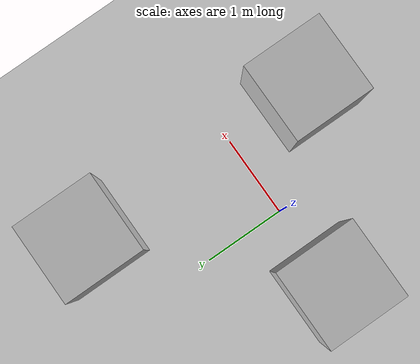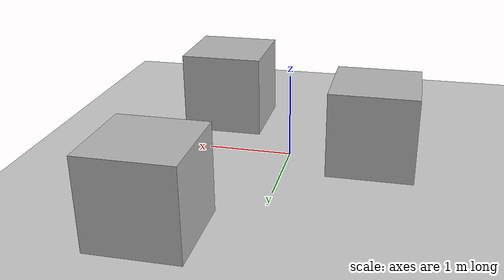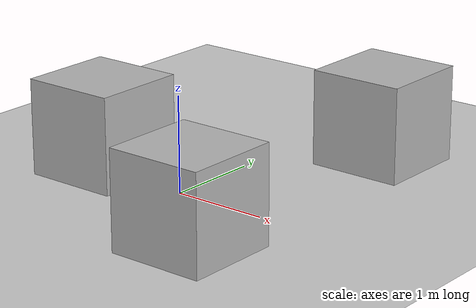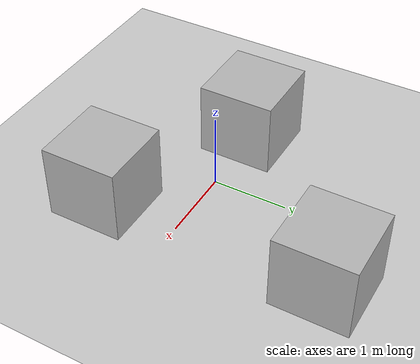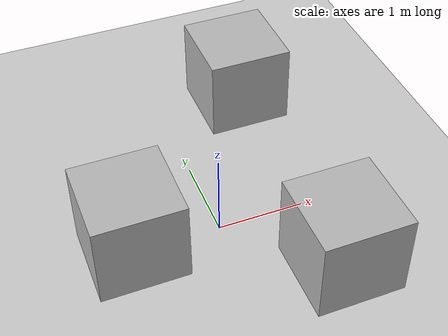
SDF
<?xml version="1.0" ?>
<sdf version="1.6">
  <world name="empty">
    <physics name="1ms" type="ignored">
      <max_step_size>0.001</max_step_size>
      <real_time_factor>1.0</real_time_factor>
    </physics>
    <plugin
      filename="gz-sim-physics-system"
      name="gz::sim::systems::Physics">
    </plugin>
    <plugin
      filename="gz-sim-user-commands-system"
      name="gz::sim::systems::UserCommands">
    </plugin>
    <plugin
      filename="gz-sim-scene-broadcaster-system"
      name="gz::sim::systems::SceneBroadcaster">
    </plugin>
    <plugin
      filename="gz-sim-contact-system"
      name="gz::sim::systems::Contact">
    </plugin>
    <plugin
    	filename="gz-sim-sensors-system"
    	name="gz::sim::systems::Sensors">
    	<render_engine>ogre2</render_engine>
    </plugin>
    <plugin
    	filename="gz-sim-imu-system"
    	name="gz::sim::systems::Imu">
    </plugin>

    <light type="directional" name="sun">
      <cast_shadows>true</cast_shadows>
      <pose>0 0 10 0 0 0</pose>
      <diffuse>0.8 0.8 0.8 1</diffuse>
      <specular>0.2 0.2 0.2 1</specular>
      <attenuation>
        <range>1000</range>
        <constant>0.9</constant>
        <linear>0.01</linear>
        <quadratic>0.001</quadratic>
      </attenuation>
      <direction>-0.5 0.1 -0.9</direction>
    </light>

    <model name="ground_plane">
      <static>true</static>
      <link name="link">
        <collision name="collision">
          <geometry>
            <plane>
              <normal>0 0 1</normal>
              <size>100 100</size>
            </plane>
          </geometry>
        </collision>
        <visual name="visual">
          <geometry>
            <plane>
              <normal>0 0 1</normal>
              <size>100 100</size>
            </plane>
          </geometry>
          <material>
            <ambient>0.8 0.8 0.8 1</ambient>
            <diffuse>0.8 0.8 0.8 1</diffuse>
            <specular>0.8 0.8 0.8 1</specular>
          </material>
        </visual>
      </link>
    </model>

    <model name='box1'>
    	<static>true</static>
    	<pose>1 2 0.5 0 0 0</pose>
    	<link name='box'>
        <visual name='visual'>
        	<geometry>
          	<box>
            	<size>1 1 1</size>
            </box>
          </geometry>
      	</visual>
      	<collision name='collision'>
        	<geometry>
          	<box>
          		<size>1 1 1</size>
        		</box>
      		</geometry>
    		</collision>
  		</link>
		</model>

		<model name='box2'>
    	<static>true</static>
    	<pose>1 -1 0.5 0 0 0</pose>
    	<link name='box'>
        <visual name='visual'>
        	<geometry>
          	<box>
            	<size>1 1 1</size>
            </box>
          </geometry>
      	</visual>
      	<collision name='collision'>
        	<geometry>
          	<box>
          		<size>1 1 1</size>
        		</box>
      		</geometry>
    		</collision>
  		</link>
		</model>

		<model name='box3'>
    	<static>true</static>
    	<pose>-1 0 0.5 0 0 0</pose>
    	<link name='box'>
        <visual name='visual'>
        	<geometry>
          	<box>
            	<size>1 1 1</size>
            </box>
          </geometry>
      	</visual>
      	<collision name='collision'>
        	<geometry>
          	<box>
          		<size>1 1 1</size>
        		</box>
      		</geometry>
    		</collision>
  		</link>
		</model>

  </world>
</sdf>
